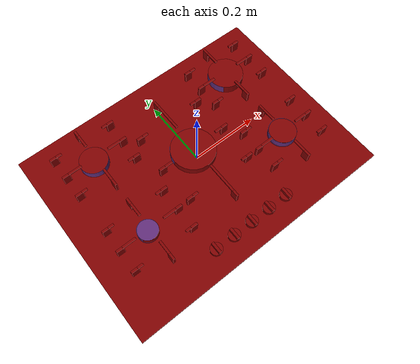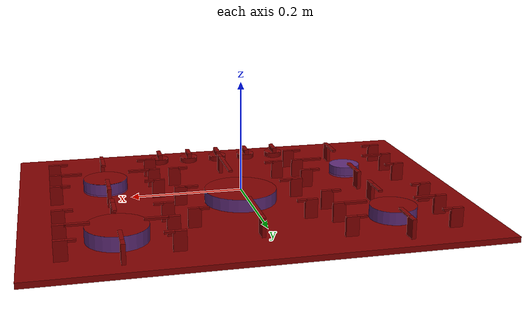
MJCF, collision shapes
<?xml version='1.0' encoding='UTF-8'?>
<mujoco model="model">
  <compiler angle="radian"/>
  <asset>
    <mesh file="visuals/knob_center.obj" name="knob_center_vis"/>
    <mesh file="visuals/knob_front_left.obj" name="knob_front_left_vis"/>
    <mesh file="visuals/knob_front_right.obj" name="knob_front_right_vis"/>
    <mesh file="visuals/knob_rear_left.obj" name="knob_rear_left_vis"/>
    <mesh file="visuals/knob_rear_right.obj" name="knob_rear_right_vis"/>
    <mesh file="visuals/Body001.obj" name="Body001_vis"/>
    <texture file="visuals/T_BC001.png" name="Body001_material" type="2d"/>
    <material name="Body001_material" rgba="1 1 1 1.0" texture="Body001_material" shininess="0.2512328028678894" specular="0.3103448502657381"/>
    <texture file="visuals/T_BC001.png" name="knob_center_material" type="2d"/>
    <material name="knob_center_material" rgba="1 1 1 1.0" texture="knob_center_material" shininess="0.2512328028678894" specular="0.3103448502657381"/>
    <texture file="visuals/T_BC001.png" name="knob_front_left_material" type="2d"/>
    <material name="knob_front_left_material" rgba="1 1 1 1.0" texture="knob_front_left_material" shininess="0.2512328028678894" specular="0.3103448502657381"/>
    <texture file="visuals/T_BC001.png" name="knob_front_right_material" type="2d"/>
    <material name="knob_front_right_material" rgba="1 1 1 1.0" texture="knob_front_right_material" shininess="0.2512328028678894" specular="0.3103448502657381"/>
    <texture file="visuals/T_BC001.png" name="knob_rear_left_material" type="2d"/>
    <material name="knob_rear_left_material" rgba="1 1 1 1.0" texture="knob_rear_left_material" shininess="0.2512328028678894" specular="0.3103448502657381"/>
    <texture file="visuals/T_BC001.png" name="knob_rear_right_material" type="2d"/>
    <material name="knob_rear_right_material" rgba="1 1 1 1.0" texture="knob_rear_right_material" shininess="0.2512328028678894" specular="0.3103448502657381"/>
  </asset>
  <default>
    <default class="visual">
      <geom conaffinity="0" contype="0" group="1" type="mesh"/>
    </default>
    <default class="collision">
      <geom group="0" rgba="0.5 0 0 0.5"/>
    </default>
    <default class="spawn">
      <geom group="0" rgba="1 1 1 0.5" contype="0" conaffinity="0"/>
      <site group="0" rgba="1 1 1 0.5"/>
    </default>
    <default class="region">
      <geom group="1" conaffinity="0" contype="0" rgba="0 1 0 0"/>
    </default>
  </default>
  <worldbody>
    <body>
      <body name="object">
        <site type="cylinder" rgba="0.3 0.4 1 0.5" size="0.06534581631422043 0.013440912589430809" pos="0.006679 0.025258 -0.002176" name="burner_center"/>
        <site type="cylinder" rgba="0.3 0.4 1 0.5" size="0.029390893876552582 0.010507233440876007" pos="-0.229120 -0.086041 -0.002456" name="burner_on_front_left"/>
        <site type="cylinder" rgba="0.3 0.4 1 0.5" size="0.04072399064898491 0.011714383028447628" pos="0.240530 -0.086084 -0.000852" name="burner_on_front_right"/>
        <site type="cylinder" rgba="0.3 0.4 1 0.5" size="0.04112732410430908 0.01153610460460186" pos="-0.229788 0.166226 -0.000593" name="burner_on_rear_left"/>
        <site type="cylinder" rgba="0.3 0.4 1 0.5" size="0.052818406373262405 0.01321405079215765" pos="0.240487 0.166146 0.000647" name="burner_on_rear_right"/>
        <geom mesh="Body001_vis" type="mesh" solimp="0.998 0.998 0.001" solref="0.001 1" density="100" friction="0.95 0.3 0.1" class="visual" material="Body001_material"/>
        <geom class="collision" type="cylinder" pos="0.006679 0.025070 -0.000570" size="0.0653318539261818 0.01186998002231121" quat="1.0 -8.146034247147327e-08 0.0 0.0"/>
        <geom class="collision" type="cylinder" pos="-0.229120 -0.086602 -0.000264" size="0.029089242219924927 0.008298126980662346" quat="1.0 -8.146034247147327e-08 0.0 0.0"/>
        <geom class="collision" type="cylinder" pos="0.240530 -0.086646 0.000857" size="0.03994863107800484 0.010417873039841652" quat="1.0 -8.146034247147327e-08 0.0 0.0"/>
        <geom class="collision" type="cylinder" pos="-0.229788 0.166156 -0.002595" size="0.04090748727321625 0.01356781180948019" quat="1.0 -8.146034247147327e-08 0.0 0.0"/>
        <geom class="collision" type="cylinder" pos="0.240487 0.166118 -0.001060" size="0.05280038341879845 0.015008931048214436" quat="1.0 -8.146034247147327e-08 0.0 0.0"/>
        <geom class="collision" type="box" pos="0.000000 -0.000000 -0.016971" size="0.3988436460494995 0.2969130873680115 0.005186833441257477" quat="1.0 0.0 0.0 0.0"/>
        <geom class="collision" type="box" pos="0.303432 -0.089478 0.020367" size="0.020070882514119148 0.003517103847116232 0.0017915081698447466" quat="1.0 0.0 0.0 0.0"/>
        <geom class="collision" type="box" pos="0.331440 -0.153874 0.005187" size="0.011054055765271187 0.0035171066410839558 0.016969336196780205" quat="1.0 0.0 0.0 0.0"/>
        <geom class="collision" type="box" pos="0.315140 -0.153874 0.020367" size="0.008363042958080769 0.003517109202221036 0.0017915108473971486" quat="1.0 0.0 0.0 0.0"/>
        <geom class="collision" type="box" pos="0.331440 -0.024291 0.005187" size="0.011054077185690403 0.00351711199618876 0.016969379037618637" quat="1.0 0.0 0.0 0.0"/>
        <geom class="collision" type="box" pos="0.315140 -0.024291 0.020367" size="0.008363064378499985 0.00351711455732584 0.0017915135249495506" quat="1.0 0.0 0.0 0.0"/>
        <geom class="collision" type="box" pos="0.239866 -0.181474 0.005187" size="0.003517120610922575 0.011054099537432194 0.01696942187845707" quat="1.0 0.0 0.0 0.0"/>
        <geom class="collision" type="box" pos="0.239866 -0.153466 0.020367" size="0.0035171261988580227 0.020071012899279594 0.0017915162025019526" quat="1.0 0.0 0.0 0.0"/>
        <geom class="collision" type="box" pos="0.239866 0.001684 0.005187" size="0.003517125966027379 0.01105412095785141 0.0169694647192955" quat="1.0 0.0 0.0 0.0"/>
        <geom class="collision" type="box" pos="0.239866 -0.026325 0.020367" size="0.0035171315539628267 0.020071055740118027 0.0017915188800543547" quat="1.0 0.0 0.0 0.0"/>
        <geom class="collision" type="box" pos="0.149005 -0.088950 0.005187" size="0.011054142378270626 0.0035171296913176775 0.016969507560133934" quat="1.0 0.0 0.0 0.0"/>
        <geom class="collision" type="box" pos="0.177013 -0.088950 0.020367" size="0.02007109671831131 0.0035171336494386196 0.0017915215576067567" quat="1.0 0.0 0.0 0.0"/>
        <geom class="collision" type="box" pos="0.149005 -0.024555 0.005187" size="0.011054163798689842 0.0035171350464224815 0.016969550400972366" quat="1.0 0.0 0.0 0.0"/>
        <geom class="collision" type="box" pos="0.165304 -0.024555 0.020367" size="0.008363150991499424 0.0035171371418982744 0.0017915242351591587" quat="1.0 0.0 0.0 0.0"/>
        <geom class="collision" type="box" pos="0.149005 -0.154138 0.005187" size="0.011054185219109058 0.0035171404015272856 0.0169695932418108" quat="1.0 0.0 0.0 0.0"/>
        <geom class="collision" type="box" pos="0.165304 -0.154138 0.020367" size="0.00836317241191864 0.0035171424970030785 0.0017915269127115607" quat="1.0 0.0 0.0 0.0"/>
        <geom class="collision" type="box" pos="0.331440 0.166047 0.005187" size="0.0110542057082057 0.0035171436611562967 0.01696963608264923" quat="1.0 0.0 0.0 0.0"/>
        <geom class="collision" type="box" pos="0.303432 0.166047 0.020367" size="0.020071225240826607 0.003517146222293377 0.0017915295902639627" quat="1.0 0.0 0.0 0.0"/>
        <geom class="collision" type="box" pos="0.331440 0.100587 0.005187" size="0.011054227128624916 0.0035171490162611008 0.016969678923487663" quat="1.0 0.0 0.0 0.0"/>
        <geom class="collision" type="box" pos="0.315140 0.100587 0.020367" size="0.008363214321434498 0.003517151577398181 0.0017915322678163648" quat="1.0 0.0 0.0 0.0"/>
        <geom class="collision" type="box" pos="0.331440 0.231874 0.005187" size="0.011054248549044132 0.003517154371365905 0.016969721764326096" quat="1.0 0.0 0.0 0.0"/>
        <geom class="collision" type="box" pos="0.315140 0.231874 0.020367" size="0.008363235741853714 0.003517156932502985 0.0017915350617840886" quat="1.0 0.0 0.0 0.0"/>
        <geom class="collision" type="box" pos="0.239866 0.072987 0.005187" size="0.0035171634517610073 0.011054271832108498 0.016969764605164528" quat="1.0 0.0 0.0 0.0"/>
        <geom class="collision" type="box" pos="0.239866 0.100995 0.020367" size="0.003517169039696455 0.020071355625987053 0.0017915377393364906" quat="1.0 0.0 0.0 0.0"/>
        <geom class="collision" type="box" pos="0.239866 0.257848 0.005187" size="0.0035171688068658113 0.011054293252527714 0.01696980744600296" quat="1.0 0.0 0.0 0.0"/>
        <geom class="collision" type="box" pos="0.239866 0.229840 0.020367" size="0.003517174394801259 0.020071398466825485 0.0017915404168888927" quat="1.0 0.0 0.0 0.0"/>
        <geom class="collision" type="box" pos="0.149005 0.166576 0.005187" size="0.011054313741624355 0.0035171720664948225 0.016969850286841393" quat="1.0 0.0 0.0 0.0"/>
        <geom class="collision" type="box" pos="0.177013 0.166576 0.020367" size="0.02007143944501877 0.0035171760246157646 0.0017915430944412947" quat="1.0 0.0 0.0 0.0"/>
        <geom class="collision" type="box" pos="0.149005 0.231610 0.005187" size="0.011054335162043571 0.0035171774215996265 0.016969893127679825" quat="1.0 0.0 0.0 0.0"/>
        <geom class="collision" type="box" pos="0.165304 0.231610 0.020367" size="0.008363322354853153 0.0035171795170754194 0.0017915457719936967" quat="1.0 0.0 0.0 0.0"/>
        <geom class="collision" type="box" pos="0.149005 0.100323 0.005187" size="0.011054356582462788 0.0035171827767044306 0.016969935968518257" quat="1.0 0.0 0.0 0.0"/>
        <geom class="collision" type="box" pos="0.165304 0.100323 0.020367" size="0.008363344706594944 0.0035171848721802235 0.0017915484495460987" quat="1.0 0.0 0.0 0.0"/>
        <geom class="collision" type="box" pos="-0.132617 -0.089478 0.005187" size="0.01105437707155943 0.0035171869676560163 0.01696997880935669" quat="1.0 0.0 0.0 0.0"/>
        <geom class="collision" type="box" pos="-0.160625 -0.089478 0.020367" size="0.020071567967534065 0.0035171895287930965 0.0017915511270985007" quat="1.0 0.0 0.0 0.0"/>
        <geom class="collision" type="box" pos="-0.132617 -0.153874 0.005187" size="0.011054398491978645 0.0035171923227608204 0.016970021650195122" quat="1.0 0.0 0.0 0.0"/>
        <geom class="collision" type="box" pos="-0.148917 -0.153874 0.020367" size="0.008363386616110802 0.0035171948838979006 0.0017915538046509027" quat="1.0 0.0 0.0 0.0"/>
        <geom class="collision" type="box" pos="-0.132617 -0.024291 0.005187" size="0.011054419912397861 0.0035171976778656244 0.016970064491033554" quat="1.0 0.0 0.0 0.0"/>
        <geom class="collision" type="box" pos="-0.148917 -0.024291 0.020367" size="0.008363408036530018 0.0035172002390027046 0.0017915564822033048" quat="1.0 0.0 0.0 0.0"/>
        <geom class="collision" type="box" pos="-0.224191 -0.181474 0.005187" size="0.0035172065254300833 0.011054442264139652 0.016970107331871986" quat="1.0 0.0 0.0 0.0"/>
        <geom class="collision" type="box" pos="-0.224191 -0.153466 0.020367" size="0.003517212113365531 0.02007169835269451 0.0017915591597557068" quat="1.0 0.0 0.0 0.0"/>
        <geom class="collision" type="box" pos="-0.224191 0.001684 0.005187" size="0.0035172118805348873 0.011054463684558868 0.01697015017271042" quat="1.0 0.0 0.0 0.0"/>
        <geom class="collision" type="box" pos="-0.224191 -0.026325 0.020367" size="0.003517217468470335 0.020071741193532944 0.0017915618373081088" quat="1.0 0.0 0.0 0.0"/>
        <geom class="collision" type="box" pos="-0.315052 -0.088950 0.005187" size="0.011054485104978085 0.003517215372994542 0.01697019301354885" quat="1.0 0.0 0.0 0.0"/>
        <geom class="collision" type="box" pos="-0.287044 -0.088950 0.020367" size="0.020071782171726227 0.0035172193311154842 0.0017915645148605108" quat="1.0 0.0 0.0 0.0"/>
        <geom class="collision" type="box" pos="-0.315052 -0.024555 0.005187" size="0.0110545065253973 0.003517220728099346 0.016970235854387283" quat="1.0 0.0 0.0 0.0"/>
        <geom class="collision" type="box" pos="-0.298753 -0.024555 0.020367" size="0.008363494649529457 0.0035172230564057827 0.0017915671924129128" quat="1.0 0.0 0.0 0.0"/>
        <geom class="collision" type="box" pos="-0.315052 -0.154138 0.005187" size="0.011054527945816517 0.00351722608320415 0.016970278695225716" quat="1.0 0.0 0.0 0.0"/>
        <geom class="collision" type="box" pos="-0.298753 -0.154138 0.020367" size="0.008363516069948673 0.0035172284115105867 0.0017915698699653149" quat="1.0 0.0 0.0 0.0"/>
        <geom class="collision" type="box" pos="-0.132617 0.166047 0.005187" size="0.011054548434913158 0.0035172293428331614 0.016970321536064148" quat="1.0 0.0 0.0 0.0"/>
        <geom class="collision" type="box" pos="-0.160625 0.166047 0.020367" size="0.020071910694241524 0.0035172319039702415 0.0017915725475177169" quat="1.0 0.0 0.0 0.0"/>
        <geom class="collision" type="box" pos="-0.132617 0.100587 0.005187" size="0.011054569855332375 0.0035172346979379654 0.01697036437690258" quat="1.0 0.0 0.0 0.0"/>
        <geom class="collision" type="box" pos="-0.148917 0.100587 0.020367" size="0.008363557979464531 0.0035172372590750456 0.001791575225070119" quat="1.0 0.0 0.0 0.0"/>
        <geom class="collision" type="box" pos="-0.132617 0.231874 0.005187" size="0.01105459127575159 0.0035172400530427694 0.016970407217741013" quat="1.0 0.0 0.0 0.0"/>
        <geom class="collision" type="box" pos="-0.148917 0.231874 0.020367" size="0.008363579399883747 0.0035172426141798496 0.001791577902622521" quat="1.0 0.0 0.0 0.0"/>
        <geom class="collision" type="box" pos="-0.224191 0.072987 0.005187" size="0.0035172493662685156 0.011054614558815956 0.016970450058579445" quat="1.0 0.0 0.0 0.0"/>
        <geom class="collision" type="box" pos="-0.224191 0.100995 0.020367" size="0.0035172549542039633 0.02007204107940197 0.001791580580174923" quat="1.0 0.0 0.0 0.0"/>
        <geom class="collision" type="box" pos="-0.224191 0.257848 0.005187" size="0.0035172547213733196 0.011054635979235172 0.016970492899417877" quat="1.0 0.0 0.0 0.0"/>
        <geom class="collision" type="box" pos="-0.224191 0.229840 0.020367" size="0.0035172603093087673 0.020072083920240402 0.001791583257727325" quat="1.0 0.0 0.0 0.0"/>
        <geom class="collision" type="box" pos="-0.315052 0.166576 0.005187" size="0.011054656468331814 0.003517257748171687 0.01697053574025631" quat="1.0 0.0 0.0 0.0"/>
        <geom class="collision" type="box" pos="-0.287044 0.166576 0.020367" size="0.020072124898433685 0.0035172617062926292 0.001791585935279727" quat="1.0 0.0 0.0 0.0"/>
        <geom class="collision" type="box" pos="-0.315052 0.231610 0.005187" size="0.01105467788875103 0.003517263103276491 0.016970578581094742" quat="1.0 0.0 0.0 0.0"/>
        <geom class="collision" type="box" pos="-0.298753 0.231610 0.020367" size="0.008363666012883186 0.0035172654315829277 0.001791588612832129" quat="1.0 0.0 0.0 0.0"/>
        <geom class="collision" type="box" pos="-0.315052 0.100323 0.005187" size="0.011054699309170246 0.003517268458381295 0.016970621421933174" quat="1.0 0.0 0.0 0.0"/>
        <geom class="collision" type="box" pos="-0.298753 0.100323 0.020367" size="0.008363687433302402 0.0035172707866877317 0.001791591290384531" quat="1.0 0.0 0.0 0.0"/>
        <geom class="collision" type="box" pos="0.115450 0.024553 0.005187" size="0.011054718866944313 0.0035172721836715937 0.016970664262771606" quat="1.0 0.0 0.0 0.0"/>
        <geom class="collision" type="box" pos="0.095813 0.024553 0.020367" size="0.011702039279043674 0.0035172749776393175 0.001791593967936933" quat="1.0 0.0 0.0 0.0"/>
        <geom class="collision" type="box" pos="0.110005 -0.088110 0.005187" size="0.011054741218686104 0.0035172735806554556 0.01697070710361004" quat="1.0 0.0 0.0 0.0"/>
        <geom class="collision" type="box" pos="0.093706 -0.088110 0.020367" size="0.00836372934281826 0.0035172763746231794 0.001791596645489335" quat="1.0 0.0 0.0 0.0"/>
        <geom class="collision" type="box" pos="0.110005 0.138000 0.005187" size="0.01105476263910532 0.0035172828938812017 0.01697074994444847" quat="1.0 0.0 0.0 0.0"/>
        <geom class="collision" type="box" pos="0.093706 0.138000 0.020367" size="0.008363750763237476 0.0035172856878489256 0.001791599323041737" quat="1.0 0.0 0.0 0.0"/>
        <geom class="collision" type="box" pos="0.008974 -0.150541 0.005187" size="0.003517292207106948 0.011054781265556812 0.016970792785286903" quat="1.0 0.0 0.0 0.0"/>
        <geom class="collision" type="box" pos="0.008974 -0.095523 0.020367" size="0.003517304314300418 0.047082770615816116 0.001791602000594139" quat="1.0 0.0 0.0 0.0"/>
        <geom class="collision" type="box" pos="0.008974 0.198641 0.005187" size="0.003517297562211752 0.011054806411266327 0.016970835626125336" quat="1.0 0.0 0.0 0.0"/>
        <geom class="collision" type="box" pos="0.008974 0.146566 0.020367" size="0.0035173087380826473 0.04413881525397301 0.0017916046781465411" quat="1.0 0.0 0.0 0.0"/>
        <geom class="collision" type="box" pos="-0.097821 0.024787 0.005187" size="0.011054827831685543 0.003517300821840763 0.016970878466963768" quat="1.0 0.0 0.0 0.0"/>
        <geom class="collision" type="box" pos="-0.078081 0.024787 0.020367" size="0.011804752983152866 0.0035173033829778433 0.0017916073556989431" quat="1.0 0.0 0.0 0.0"/>
        <geom class="collision" type="box" pos="-0.091792 0.137736 0.005187" size="0.01105484925210476 0.003517305012792349 0.01697092317044735" quat="1.0 0.0 0.0 0.0"/>
        <geom class="collision" type="box" pos="-0.075492 0.137736 0.020367" size="0.008363837376236916 0.0035173073410987854 0.0017916100332513452" quat="1.0 0.0 0.0 0.0"/>
        <geom class="collision" type="box" pos="-0.091792 -0.087992 0.005187" size="0.0110548697412014 0.003517307573929429 0.016970966011285782" quat="1.0 0.0 0.0 0.0"/>
        <geom class="collision" type="box" pos="-0.075492 -0.087992 0.020367" size="0.008363857865333557 0.003517309669405222 0.0017916127108037472" quat="1.0 0.0 0.0 0.0"/>
        <geom class="collision" type="box" pos="0.331440 -0.089478 0.005187" size="0.011054891161620617 0.0035173154901713133 0.016971008852124214" quat="1.0 0.0 0.0 0.0"/>
        <body name="knob_center">
          <joint axis="0.0 0.0 1.0" pos="-0.000530 -0.231921 0.004847" limited="true" name="knob_center_joint" range="0.0 3.141592653589793" type="hinge" damping="0.05" armature="0.001"/>
          <geom mesh="knob_center_vis" type="mesh" solimp="0.998 0.998 0.001" solref="0.001 1" density="100" friction="0.95 0.3 0.1" class="visual" material="knob_center_material"/>
          <geom class="collision" type="cylinder" pos="-0.000549 -0.232024 -0.005230" size="0.017434313893318176 0.004886653274297714" quat="1.0 0.0 0.0 0.0"/>
          <geom class="collision" type="box" pos="-0.000549 -0.232108 0.004853" size="0.003995509352535009 0.016683723777532578 0.0051959967240691185" quat="1.0 0.0 0.0 0.0"/>
        </body>
        <body name="knob_front_left">
          <joint axis="0.0 0.0 1.0" pos="-0.120656 -0.231921 0.004847" limited="true" name="knob_front_left_joint" range="0.0 3.141592653589793" type="hinge" damping="0.05" armature="0.001"/>
          <geom mesh="knob_front_left_vis" type="mesh" solimp="0.998 0.998 0.001" solref="0.001 1" density="100" friction="0.95 0.3 0.1" class="visual" material="knob_front_left_material"/>
          <geom class="collision" type="cylinder" pos="-0.120689 -0.232024 -0.005230" size="0.017434313893318176 0.004886653274297714" quat="1.0 0.0 0.0 0.0"/>
          <geom class="collision" type="box" pos="-0.120689 -0.232108 0.004853" size="0.00399551447480917 0.01668376475572586 0.005196006968617439" quat="1.0 0.0 0.0 0.0"/>
        </body>
        <body name="knob_front_right">
          <joint axis="0.0 0.0 1.0" pos="0.119596 -0.231921 0.004847" limited="true" name="knob_front_right_joint" range="0.0 3.141592653589793" type="hinge" damping="0.05" armature="0.001"/>
          <geom mesh="knob_front_right_vis" type="mesh" solimp="0.998 0.998 0.001" solref="0.001 1" density="100" friction="0.95 0.3 0.1" class="visual" material="knob_front_right_material"/>
          <geom class="collision" type="box" pos="0.119611 -0.232108 0.004853" size="0.0039955065585672855 0.016683701425790787 0.005195991136133671" quat="1.0 0.0 0.0 0.0"/>
          <geom class="collision" type="cylinder" pos="0.119611 -0.232024 -0.005230" size="0.017434313893318176 0.004886653274297714" quat="1.0 0.0 0.0 0.0"/>
        </body>
        <body name="knob_rear_left">
          <joint axis="0.0 0.0 1.0" pos="-0.060593 -0.231921 0.004847" limited="true" name="knob_rear_left_joint" range="0.0 3.141592653589793" type="hinge" damping="0.05" armature="0.001"/>
          <geom mesh="knob_rear_left_vis" type="mesh" solimp="0.998 0.998 0.001" solref="0.001 1" density="100" friction="0.95 0.3 0.1" class="visual" material="knob_rear_left_material"/>
          <geom class="collision" type="cylinder" pos="-0.060619 -0.232024 -0.005230" size="0.017434313893318176 0.004886653274297714" quat="1.0 0.0 0.0 0.0"/>
          <geom class="collision" type="box" pos="-0.060619 -0.232108 0.004853" size="0.003995511680841446 0.01668374426662922 0.005196001846343279" quat="1.0 0.0 0.0 0.0"/>
        </body>
        <body name="knob_rear_right">
          <joint axis="0.0 0.0 1.0" pos="0.059533 -0.231921 0.004847" limited="true" name="knob_rear_right_joint" range="0.0 3.141592653589793" type="hinge" damping="0.05" armature="0.001"/>
          <geom mesh="knob_rear_right_vis" type="mesh" solimp="0.998 0.998 0.001" solref="0.001 1" density="100" friction="0.95 0.3 0.1" class="visual" material="knob_rear_right_material"/>
          <geom class="collision" type="cylinder" pos="0.059376 -0.232024 -0.005230" size="0.017434313893318176 0.004886653274297714" quat="1.0 0.0 0.0 0.0"/>
          <geom class="collision" type="box" pos="0.059376 -0.232108 0.004853" size="0.003995517268776894 0.016683785244822502 0.0051960120908916" quat="1.0 0.0 0.0 0.0"/>
        </body>
        <geom class="region" name="reg_main" type="box" pos="0.0 0.0 -0.016971" size="0.398882 0.296932 0.005187000000000001"/>
      </body>
    </body>
  </worldbody>
  <actuator>
    <motor name="knob_center_joint_actuator" joint="knob_center_joint" gear="10"/>
    <motor name="knob_front_left_joint_actuator" joint="knob_front_left_joint" gear="10"/>
    <motor name="knob_front_right_joint_actuator" joint="knob_front_right_joint" gear="10"/>
    <motor name="knob_rear_left_joint_actuator" joint="knob_rear_left_joint" gear="10"/>
    <motor name="knob_rear_right_joint_actuator" joint="knob_rear_right_joint" gear="10"/>
  </actuator>
</mujoco>
